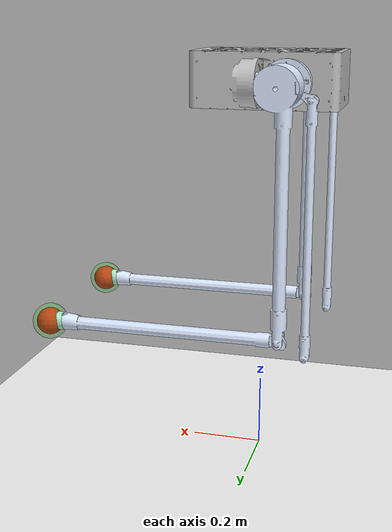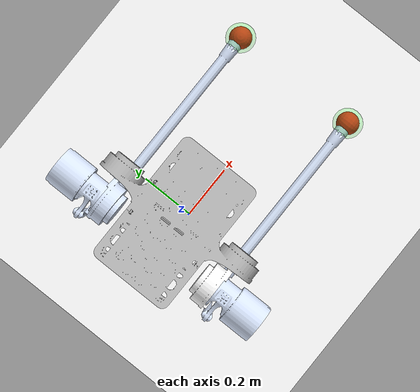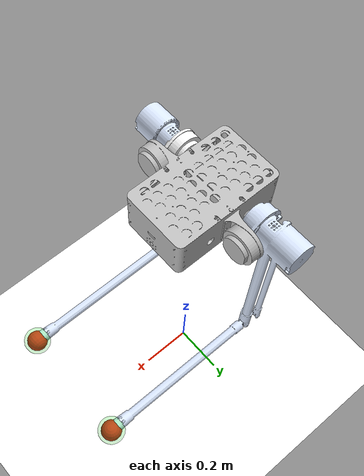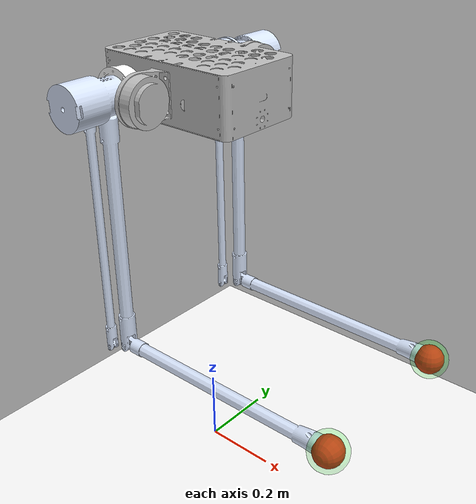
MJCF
<?xml version="1.0" encoding="utf-8"?>
<mujoco model="srl_real_bot_260629">
  <!-- Converted from zhan_shen_xi_v2.urdf using the V1 simulation conventions. -->
  <statistic center="0 0 1" extent="2"/>

  <compiler angle="degree" meshdir="meshes_v2/"/>
  <option timestep="0.005" integrator="RK4"/>

  <asset>
    <mesh name="base_link" file="base_link.STL"/>
    <mesh name="left_hip_x_link" file="left_hip_x_link.STL"/>
    <mesh name="left_hip_y_link" file="left_hip_y_link.STL"/>
    <mesh name="left_knee_link" file="left_knee_link.STL"/>
    <mesh name="right_hip_x_link" file="right_hip_x_link.STL"/>
    <mesh name="right_hip_y_link" file="right_hip_y_link.STL"/>
    <mesh name="right_knee_link" file="right_knee_link.STL"/>

    <material name="blue_mat" rgba="0.86 0.91 1 1"/>
    <material name="white_mat" rgba="1 1 1 1"/>
    <material name="gray_mat" rgba="0.75294 0.75294 0.75294 1"/>
    <material name="collision_mat" rgba="0.8 0.5 0.3 0.5"/>
  </asset>

  <default>
    <joint damping="2.0" armature="0.01" limited="true" stiffness="5" type="hinge"/>
    <geom solref="0.005 1" solimp="0.9 0.95 0.001" friction="1.0 0.005 0.0001" condim="3"/>

    <default class="visual">
      <geom type="mesh" contype="0" conaffinity="0" group="2" material="blue_mat"/>
    </default>

    <default class="collision">
      <geom contype="1" conaffinity="1" group="3" material="collision_mat"/>
    </default>

    <motor ctrllimited="true" ctrlrange="-1 1"/>
  </default>

  <worldbody>
    <light pos="0 0 3" dir="0 0 -1" directional="true"/>
    <geom pos="0 0 0" name="floor" type="plane" size="0 0 0.1" material="white_mat" rgba="0.5 0.5 0.5 1"/>

    <body name="base_link" pos="0 0 1.0" euler="0 0 0">
      <freejoint/>
      <inertial pos="-0.0098935 0.000000018459 0.07129"
                mass="11.86"
                fullinertia="0.16916 0.12656 0.26136 0 0.001819 0"/>

      <geom mesh="base_link" material="gray_mat" class="visual"/>
      <geom type="box" size="0.20 0.16 0.08" pos="-0.013 0 0.076" class="collision"/>

      <body name="left_hip_x_link" pos="-0.0135474328 0.1945 0.0745" euler="0 0 0">
        <inertial pos="-0.069266 -0.020918 0.000046759"
                  mass="1.4819"
                  fullinertia="0.001608 0.002743 0.001846 -0.000085 0.000001 -0.000001"/>
        <!-- previous high damping PD: stiffness="250", damping="18"; low damping test: damping="5" -->
        <joint name="left_hip_x_joint" axis="1 0 0" range="-25 25"
               damping="12" stiffness="250" armature="0.1"/>

        <geom mesh="left_hip_x_link" class="visual"/>
        <geom type="capsule" size="0.025" fromto="-0.14 0 0 0 0 0" class="collision"/>

        <body name="left_hip_y_link" pos="-0.0750000104 -0.0007499924 0" euler="0 0 0">
          <inertial pos="-0.011585 0.058033 -0.17808"
                    mass="4.0982"
                    fullinertia="0.18128 0.1781 0.011168 -0.001291 -0.006815 -0.019831"/>
          <!-- previous high damping PD: stiffness="300", damping="22"; low damping test: damping="5" -->
          <joint name="left_hip_y_joint" axis="0 -1 0" range="-60 20"
                 damping="14" stiffness="300" armature="0.1"/>

          <geom mesh="left_hip_y_link" class="visual"/>
          <geom type="capsule" size="0.025" fromto="0 0 0 0 0.029 -0.671" class="collision"/>

          <body name="left_knee_link" pos="0 0.0289999924 -0.6710000028" euler="0 0 0">
            <inertial pos="0.36934 -0.00000061734 0.0015106"
                      mass="0.59515"
                      fullinertia="0.000187 0.031175 0.031161 0 -0.000077 0"/>
            <!-- previous high damping PD: stiffness="300", damping="14"; low damping test: damping="5" -->
            <joint name="left_knee_joint" axis="0 -1 0" range="-45 45"
                   damping="10" stiffness="300" armature="0.1"/>

            <geom mesh="left_knee_link" class="visual"/>
            <geom type="capsule" size="0.035" fromto="0 0 0 0.640 0 0" class="collision"/>

            <body name="left_foot" pos="0.650 0 0">
              <inertial pos="0 0 0" mass="0.06" diaginertia="0.0001 0.0001 0.0001"/>
              <geom name="left_foot_contact" type="sphere" size="0.038"
                    friction="0.9 0.01 0.005"
                    contype="1" conaffinity="1"
                    rgba="0.9 0.1 0.1 1"/>
              <site name="left_foot_touch" size="0.05" rgba="0 1 0 0.2"/>
            </body>
          </body>
        </body>
      </body>

      <body name="right_hip_x_link" pos="-0.0135474328 -0.1945 0.0745" euler="0 0 0">
        <inertial pos="-0.069266 0.020918 -0.000046759"
                  mass="1.4819"
                  fullinertia="0.001608 0.002743 0.001846 0.000085 -0.000001 -0.000001"/>
        <!-- previous high damping PD: stiffness="250", damping="18"; low damping test: damping="5" -->
        <joint name="right_hip_x_joint" axis="-1 0 0" range="-25 25"
               damping="12" stiffness="250" armature="0.1"/>

        <geom mesh="right_hip_x_link" material="white_mat" class="visual"/>
        <geom type="capsule" size="0.025" fromto="-0.14 0 0 0 0 0" class="collision"/>

        <body name="right_hip_y_link" pos="-0.075 0.00075 0" euler="0 0 0">
          <inertial pos="-0.011585 -0.057741 -0.17808"
                    mass="4.0982"
                    fullinertia="0.18134 0.1781 0.011233 0.001305 -0.00681 0.020127"/>
          <!-- previous high damping PD: stiffness="300", damping="22"; low damping test: damping="5" -->
          <joint name="right_hip_y_joint" axis="0 -1 0" range="-60 20"
                 damping="14" stiffness="300" armature="0.1"/>

          <geom mesh="right_hip_y_link" class="visual"/>
          <geom type="capsule" size="0.025" fromto="0 0 0 0 -0.029 -0.671" class="collision"/>

          <body name="right_knee_link" pos="0 -0.029 -0.671" euler="90 0 0">
            <inertial pos="0.36934 0.0015106 0.00000061737"
                      mass="0.59515"
                      fullinertia="0.000187 0.031161 0.031175 -0.000077 0 0"/>
            <!-- previous high damping PD: stiffness="300", damping="14"; low damping test: damping="5" -->
            <joint name="right_knee_joint" axis="0 0 1" range="-45 45"
                   damping="10" stiffness="300" armature="0.1"  />

            <geom mesh="right_knee_link" class="visual"/>
            <geom type="capsule" size="0.035" fromto="0 0 0 0.640 0 0" class="collision"/>

            <body name="right_foot" pos="0.650 0 0">
              <inertial pos="0 0 0" mass="0.06" diaginertia="0.0001 0.0001 0.0001"/>
              <geom name="right_foot_contact" type="sphere" size="0.038"
                    friction="0.9 0.01 0.005"
                    contype="1" conaffinity="1"
                    rgba="0.9 0.1 0.1 1"/>
              <site name="right_foot_touch" size="0.05" rgba="0 1 0 0.2"/>
            </body>
          </body>
        </body>
      </body>
    </body>
  </worldbody>

  <actuator>
    <motor name="left_hip_x_torque" joint="left_hip_x_joint" gear="450"/>
    <motor name="left_hip_y_torque" joint="left_hip_y_joint" gear="450"/>
    <motor name="left_knee_torque" joint="left_knee_joint" gear="450"/>

    <motor name="right_hip_x_torque" joint="right_hip_x_joint" gear="450"/>
    <motor name="right_hip_y_torque" joint="right_hip_y_joint" gear="450"/>
    <motor name="right_knee_torque" joint="right_knee_joint" gear="450"/>
  </actuator>
</mujoco>
